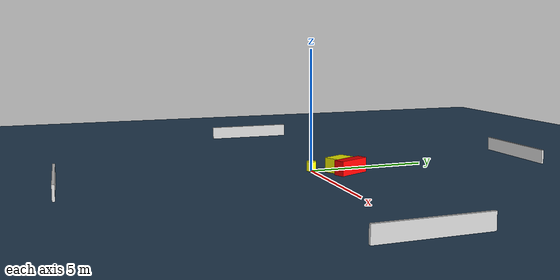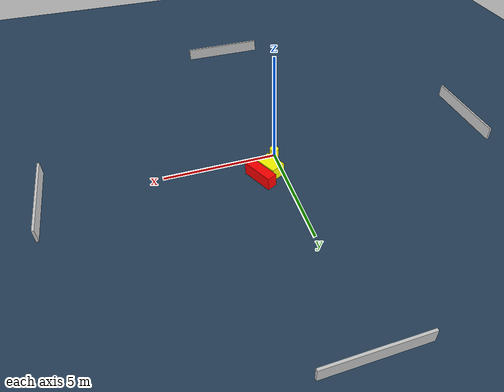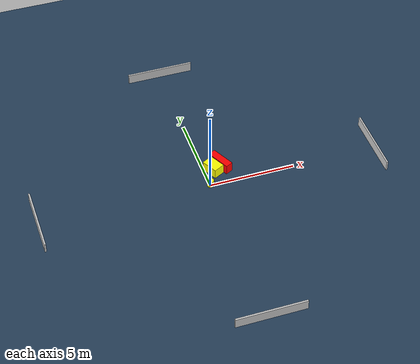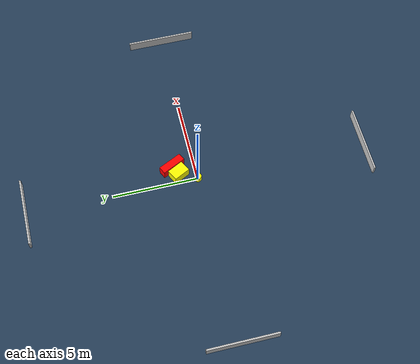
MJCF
<?xml version="1.0" ?>
<mujoco model="generated_environment">
  <option timestep="0.01" integrator="RK4" cone="elliptic"/>
  <default>
    <geom density="1"/>
  </default>
  <asset>
    <texture builtin="gradient" height="3072" name="skybox" rgb1="0.3 0.5 0.7" rgb2="0 0 0" type="skybox" width="512"/>
    <texture builtin="checker" height="300" name="groundplane" rgb1="0.2 0.3 0.4" rgb2="0.1 0.2 0.3" type="2d" width="300"/>
    <material name="groundplane" reflectance="0.2" texrepeat="5 5" texture="groundplane"/>
  </asset>
  <worldbody>
    <light dir="0 0 -1" directional="true" pos="0 0 1.5"/>
    <geom condim="3" friction="0.5 0.005 0.001" material="groundplane" name="floor" pos="0 0 0" size="0 0 0.05" type="plane"/>
    <body name="walls">
      <geom name="wall_1" condim="4" pos="-10.0 0.0 0.3" rgba="0.800000011920929 0.800000011920929 0.800000011920929 1.0" size="0.05 2.0 0.3" type="box"/>
      <geom name="wall_2" condim="4" pos="10.0 0.0 0.3" rgba="0.800000011920929 0.800000011920929 0.800000011920929 1.0" size="0.05 2.0 0.3" type="box"/>
      <geom name="wall_3" condim="4" pos="0.0 -10.0 0.3" rgba="0.800000011920929 0.800000011920929 0.800000011920929 1.0" size="2.0 0.05 0.3" type="box"/>
      <geom name="wall_4" condim="4" pos="0.0 10.0 0.3" rgba="0.800000011920929 0.800000011920929 0.800000011920929 1.0" size="2.0 0.05 0.3" type="box"/>
    </body>
    <body name="robot">
      <joint name="joint_x" type="slide" pos="0 0 0" axis="1 0 0"/>
      <joint name="joint_y" type="slide" pos="0 0 0" axis="0 1 0"/>
      <geom name="robot" type="cylinder" pos="0.0 0.0 0.2" size="0.2 0.2 0.0" mass="5.0" friction="1.0 0.005 0.0001" condim="4" rgba="1.0 1.0 0.0 1.0"/>
    </body>
    <body name="obstacle_1_movable">
      <geom name="obstacle_1_movable" condim="4" pos="0.5088290751201268 1.0262204001502917 0.3" euler="0 0 296.782230672833" friction="0.0 0.005 0.001" rgba="1.0 1.0 0.0 1.0" size="0.4932007628408586 0.3361832781426526 0.3" type="box" mass="0.1"/>
      <joint type="free"/>
    </body>
    <body name="obstacle_2_static">
      <geom name="obstacle_2_static" condim="4" pos="1.042801827071626 1.3081538733485936 0.3" euler="0 0 115.87965854512044" friction="0.0 0.005 0.001" rgba="1.0 0.0 0.0 1.0" size="0.7245708138167828 0.2234304525839632 0.3" type="box"/>
    </body>
  </worldbody>
  <actuator>
    <motor name="actuator_x" joint="joint_x" gear="1" ctrlrange="-1 1"/>
    <motor name="actuator_y" joint="joint_y" gear="1" ctrlrange="-1 1"/>
  </actuator>
</mujoco>
